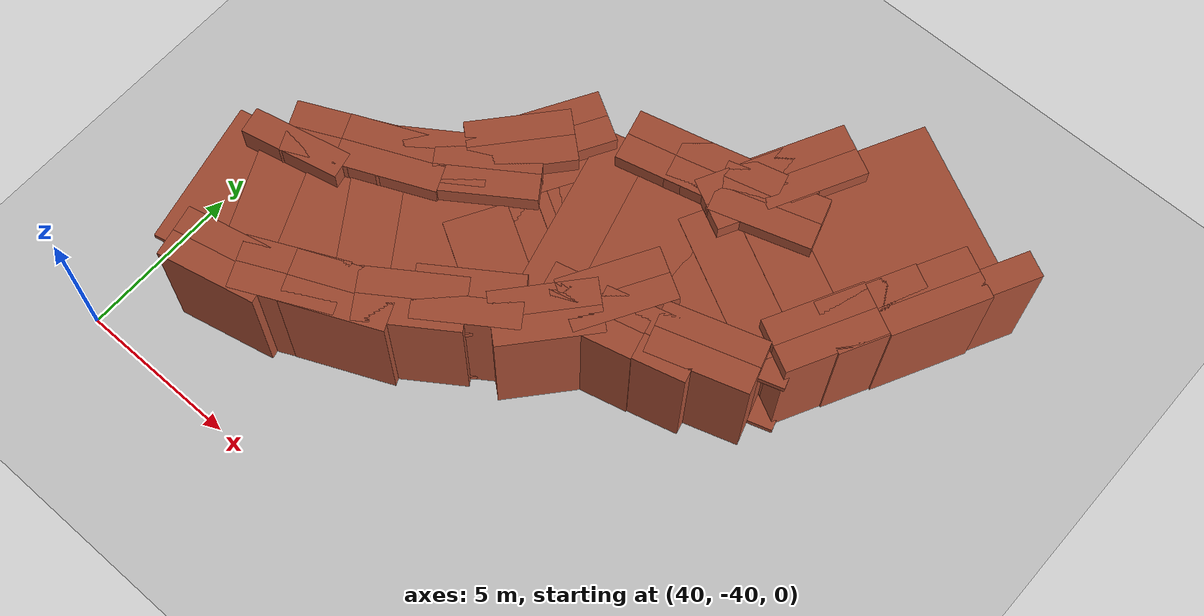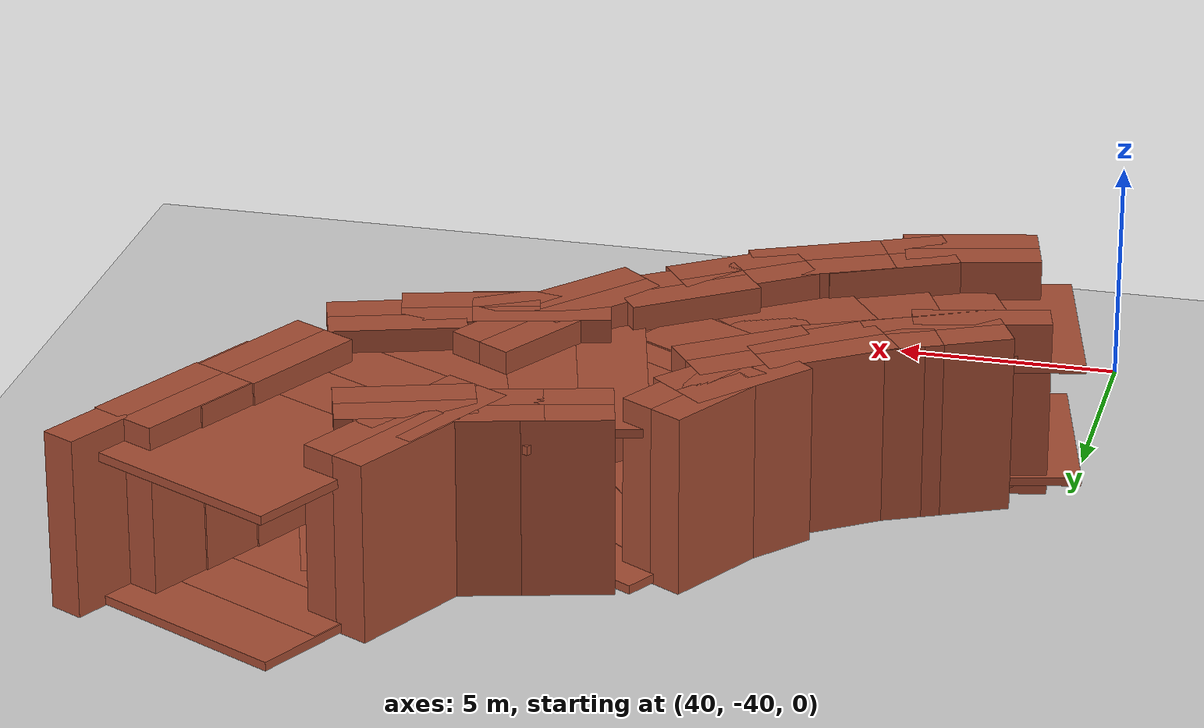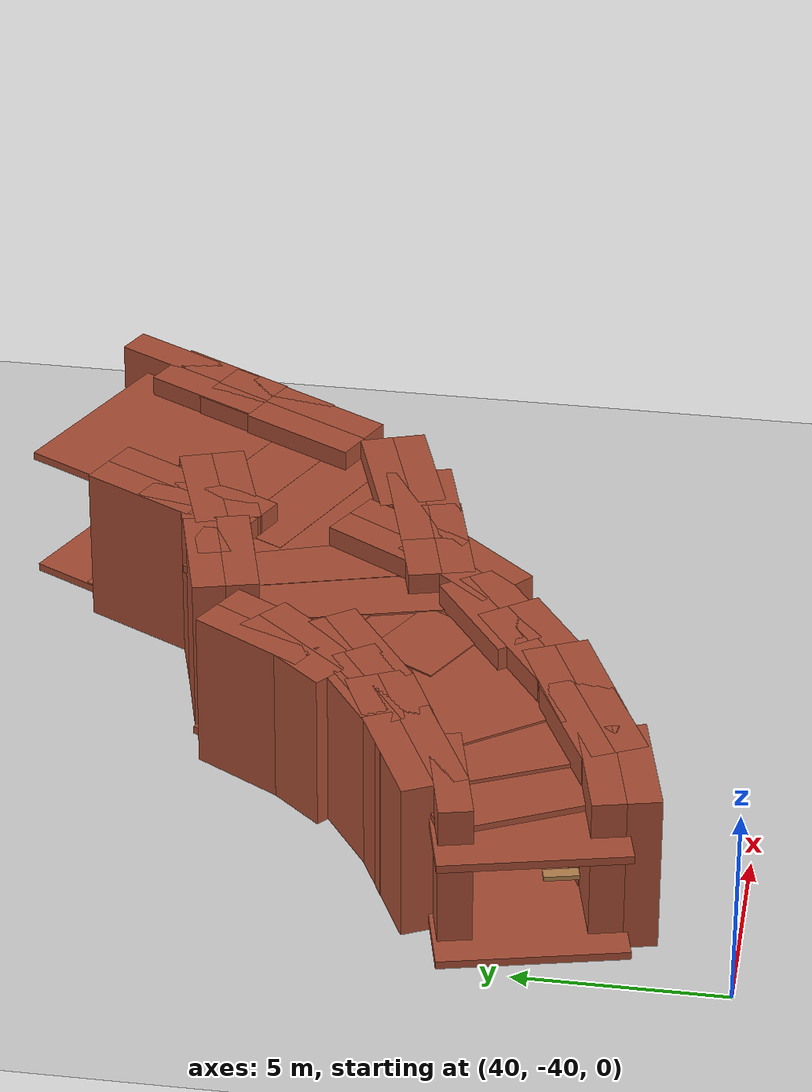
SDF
<sdf version="1.6">
 <world name="procedural_cave_world">
  <include><uri>model://sun</uri></include>
  <include><uri>model://ground_plane</uri></include>
  <model name="procedural_cave">
   <static>true</static>
   <link name="left_wall_40">
    <pose>42.07693247839063 -33.3320221090095 1.5 0 0 0.22591309134500118</pose>
    <collision name="collision"><geometry><box><size>3.0 0.8 5.0</size></box></geometry></collision>
    <visual name="visual">
     <geometry><box><size>3.0 0.8 5.0</size></box></geometry>
     <material>
      <script><uri>file://media/materials/scripts/gazebo.material</uri><name>Gazebo/Bricks</name></script>
     </material>
    </visual>
   </link>
   <link name="right_wall_40">
    <pose>42.84302637422118 -36.66523470073922 1.5 0 0 0.22591309134500118</pose>
    <collision name="collision"><geometry><box><size>3.0 0.8 5.0</size></box></geometry></collision>
    <visual name="visual">
     <geometry><box><size>3.0 0.8 5.0</size></box></geometry>
     <material>
      <script><uri>file://media/materials/scripts/gazebo.material</uri><name>Gazebo/Bricks</name></script>
     </material>
    </visual>
   </link>
   <link name="fill_right_40">
    <pose>43.02222345027279 -37.44490668813812 1.5 0 0 0.22591309134500118</pose>
    <collision name="collision"><geometry><box><size>3.0 0.8 5.0</size></box></geometry></collision>
    <visual name="visual">
     <geometry><box><size>3.0 0.8 5.0</size></box></geometry>
     <material>
      <script><uri>file://media/materials/scripts/gazebo.material</uri><name>Gazebo/Bricks</name></script>
     </material>
    </visual>
   </link>
   <link name="ceiling_40">
    <pose>42.45997942630591 -34.99862840487436 2.999546374531039 0 0 0.22591309134500118</pose>
    <collision name="collision"><geometry><box><size>4.5 4.42011783991347 0.2</size></box></geometry></collision>
    <visual name="visual">
     <geometry><box><size>4.5 4.42011783991347 0.2</size></box></geometry>
     <material>
      <script><uri>file://media/materials/scripts/gazebo.material</uri><name>Gazebo/Bricks</name></script>
     </material>
    </visual>
   </link>
   <link name="floor_40">
    <pose>42.45997942630591 -34.99862840487436 0.314416268008175 0 0 0.22591309134500118</pose>
    <collision name="collision"><geometry><box><size>4.5 4.42011783991347 0.2</size></box></geometry></collision>
    <visual name="visual">
     <geometry><box><size>4.5 4.42011783991347 0.2</size></box></geometry>
     <material>
      <script><uri>file://media/materials/scripts/gazebo.material</uri><name>Gazebo/Bricks</name></script>
     </material>
    </visual>
   </link>
   <link name="obs_slab_40">
    <pose>42.651502900263544 -35.831931552806786 0.9904191813266537 0 0 0.22591309134500118</pose>
    <collision name="collision">
     <geometry><box><size>0.3 0.8296286318725195 0.11065076611069069</size></box></geometry>
    </collision>
    <visual name="visual">
     <geometry><box><size>0.3 0.8296286318725195 0.11065076611069069</size></box></geometry>
     <material>
      <script><uri>file://media/materials/scripts/gazebo.material</uri><name>Gazebo/Wood</name></script>
     </material>
    </visual>
   </link>
   <link name="left_wall_41">
    <pose>43.07100946039234 -32.79503126979987 1.5 0 0 0.444954821912642</pose>
    <collision name="collision"><geometry><box><size>3.0 0.8 5.0</size></box></geometry></collision>
    <visual name="visual">
     <geometry><box><size>3.0 0.8 5.0</size></box></geometry>
     <material>
      <script><uri>file://media/materials/scripts/gazebo.material</uri><name>Gazebo/Bricks</name></script>
     </material>
    </visual>
   </link>
   <link name="right_wall_41">
    <pose>44.556839727435595 -35.91097423503444 1.5 0 0 0.444954821912642</pose>
    <collision name="collision"><geometry><box><size>3.0 0.8 5.0</size></box></geometry></collision>
    <visual name="visual">
     <geometry><box><size>3.0 0.8 5.0</size></box></geometry>
     <material>
      <script><uri>file://media/materials/scripts/gazebo.material</uri><name>Gazebo/Bricks</name></script>
     </material>
    </visual>
   </link>
   <link name="fill_left_41">
    <pose>42.72667577908183 -32.07292718040891 1.5 0 0 0.444954821912642</pose>
    <collision name="collision"><geometry><box><size>3.0 0.8 5.0</size></box></geometry></collision>
    <visual name="visual">
     <geometry><box><size>3.0 0.8 5.0</size></box></geometry>
     <material>
      <script><uri>file://media/materials/scripts/gazebo.material</uri><name>Gazebo/Bricks</name></script>
     </material>
    </visual>
   </link>
   <link name="fill_right_41">
    <pose>44.901173408746104 -36.6330783244254 1.5 0 0 0.444954821912642</pose>
    <collision name="collision"><geometry><box><size>3.0 0.8 5.0</size></box></geometry></collision>
    <visual name="visual">
     <geometry><box><size>3.0 0.8 5.0</size></box></geometry>
     <material>
      <script><uri>file://media/materials/scripts/gazebo.material</uri><name>Gazebo/Bricks</name></script>
     </material>
    </visual>
   </link>
   <link name="ceiling_41">
    <pose>43.81392459391397 -34.353002752417154 3.159727824718624 0 0 0.444954821912642</pose>
    <collision name="collision"><geometry><box><size>4.5 4.452070703948082 0.2</size></box></geometry></collision>
    <visual name="visual">
     <geometry><box><size>4.5 4.452070703948082 0.2</size></box></geometry>
     <material>
      <script><uri>file://media/materials/scripts/gazebo.material</uri><name>Gazebo/Bricks</name></script>
     </material>
    </visual>
   </link>
   <link name="floor_41">
    <pose>43.81392459391397 -34.353002752417154 0.22864976080490498 0 0 0.444954821912642</pose>
    <collision name="collision"><geometry><box><size>4.5 4.452070703948082 0.2</size></box></geometry></collision>
    <visual name="visual">
     <geometry><box><size>4.5 4.452070703948082 0.2</size></box></geometry>
     <material>
      <script><uri>file://media/materials/scripts/gazebo.material</uri><name>Gazebo/Bricks</name></script>
     </material>
    </visual>
   </link>
   <link name="left_wall_42">
    <pose>44.46812420741609 -32.15427497153864 1.5 0 0 0.4235111913891356</pose>
    <collision name="collision"><geometry><box><size>3.0 0.8 5.0</size></box></geometry></collision>
    <visual name="visual">
     <geometry><box><size>3.0 0.8 5.0</size></box></geometry>
     <material>
      <script><uri>file://media/materials/scripts/gazebo.material</uri><name>Gazebo/Bricks</name></script>
     </material>
    </visual>
   </link>
   <link name="right_wall_42">
    <pose>45.89467974973923 -35.31883864438839 1.5 0 0 0.4235111913891356</pose>
    <collision name="collision"><geometry><box><size>3.0 0.8 5.0</size></box></geometry></collision>
    <visual name="visual">
     <geometry><box><size>3.0 0.8 5.0</size></box></geometry>
     <material>
      <script><uri>file://media/materials/scripts/gazebo.material</uri><name>Gazebo/Bricks</name></script>
     </material>
    </visual>
   </link>
   <link name="fill_left_42">
    <pose>44.13935303704082 -31.424953699718003 1.5 0 0 0.4235111913891356</pose>
    <collision name="collision"><geometry><box><size>3.0 0.8 5.0</size></box></geometry></collision>
    <visual name="visual">
     <geometry><box><size>3.0 0.8 5.0</size></box></geometry>
     <material>
      <script><uri>file://media/materials/scripts/gazebo.material</uri><name>Gazebo/Bricks</name></script>
     </material>
    </visual>
   </link>
   <link name="fill_right_42">
    <pose>46.2234509201145 -36.04815991620903 1.5 0 0 0.4235111913891356</pose>
    <collision name="collision"><geometry><box><size>3.0 0.8 5.0</size></box></geometry></collision>
    <visual name="visual">
     <geometry><box><size>3.0 0.8 5.0</size></box></geometry>
     <material>
      <script><uri>file://media/materials/scripts/gazebo.material</uri><name>Gazebo/Bricks</name></script>
     </material>
    </visual>
   </link>
   <link name="ceiling_42">
    <pose>45.18140197857766 -33.73655680796352 3.2558366948311743 0 0 0.4235111913891356</pose>
    <collision name="collision"><geometry><box><size>4.5 4.471242422368849 0.2</size></box></geometry></collision>
    <visual name="visual">
     <geometry><box><size>4.5 4.471242422368849 0.2</size></box></geometry>
     <material>
      <script><uri>file://media/materials/scripts/gazebo.material</uri><name>Gazebo/Bricks</name></script>
     </material>
    </visual>
   </link>
   <link name="floor_42">
    <pose>45.18140197857766 -33.73655680796352 0.177189856482943 0 0 0.4235111913891356</pose>
    <collision name="collision"><geometry><box><size>4.5 4.471242422368849 0.2</size></box></geometry></collision>
    <visual name="visual">
     <geometry><box><size>4.5 4.471242422368849 0.2</size></box></geometry>
     <material>
      <script><uri>file://media/materials/scripts/gazebo.material</uri><name>Gazebo/Bricks</name></script>
     </material>
    </visual>
   </link>
   <link name="left_wall_43">
    <pose>45.42564844501193 -31.451229120964104 1.5 0 0 0.6045974022430027</pose>
    <collision name="collision"><geometry><box><size>3.0 0.8 5.0</size></box></geometry></collision>
    <visual name="visual">
     <geometry><box><size>3.0 0.8 5.0</size></box></geometry>
     <material>
      <script><uri>file://media/materials/scripts/gazebo.material</uri><name>Gazebo/Bricks</name></script>
     </material>
    </visual>
   </link>
   <link name="right_wall_43">
    <pose>47.40534855205766 -34.31659181693995 1.5 0 0 0.6045974022430027</pose>
    <collision name="collision"><geometry><box><size>3.0 0.8 5.0</size></box></geometry></collision>
    <visual name="visual">
     <geometry><box><size>3.0 0.8 5.0</size></box></geometry>
     <material>
      <script><uri>file://media/materials/scripts/gazebo.material</uri><name>Gazebo/Bricks</name></script>
     </material>
    </visual>
   </link>
   <link name="fill_left_43">
    <pose>44.97090373087247 -30.793044310320298 1.5 0 0 0.6045974022430027</pose>
    <collision name="collision"><geometry><box><size>3.0 0.8 5.0</size></box></geometry></collision>
    <visual name="visual">
     <geometry><box><size>3.0 0.8 5.0</size></box></geometry>
     <material>
      <script><uri>file://media/materials/scripts/gazebo.material</uri><name>Gazebo/Bricks</name></script>
     </material>
    </visual>
   </link>
   <link name="fill_right_43">
    <pose>47.86009326619712 -34.97477662758375 1.5 0 0 0.6045974022430027</pose>
    <collision name="collision"><geometry><box><size>3.0 0.8 5.0</size></box></geometry></collision>
    <visual name="visual">
     <geometry><box><size>3.0 0.8 5.0</size></box></geometry>
     <material>
      <script><uri>file://media/materials/scripts/gazebo.material</uri><name>Gazebo/Bricks</name></script>
     </material>
    </visual>
   </link>
   <link name="ceiling_43">
    <pose>46.415498498534795 -32.883910468952024 3.313502016898705 0 0 0.6045974022430027</pose>
    <collision name="collision"><geometry><box><size>4.5 4.48274545342131 0.2</size></box></geometry></collision>
    <visual name="visual">
     <geometry><box><size>4.5 4.48274545342131 0.2</size></box></geometry>
     <material>
      <script><uri>file://media/materials/scripts/gazebo.material</uri><name>Gazebo/Bricks</name></script>
     </material>
    </visual>
   </link>
   <link name="floor_43">
    <pose>46.415498498534795 -32.883910468952024 0.14631391388976578 0 0 0.6045974022430027</pose>
    <collision name="collision"><geometry><box><size>4.5 4.48274545342131 0.2</size></box></geometry></collision>
    <visual name="visual">
     <geometry><box><size>4.5 4.48274545342131 0.2</size></box></geometry>
     <material>
      <script><uri>file://media/materials/scripts/gazebo.material</uri><name>Gazebo/Bricks</name></script>
     </material>
    </visual>
   </link>
   <link name="left_wall_44">
    <pose>46.78834209818656 -30.79333187945832 1.5 0 0 0.6078522600656097</pose>
    <collision name="collision"><geometry><box><size>3.0 0.8 5.0</size></box></geometry></collision>
    <visual name="visual">
     <geometry><box><size>3.0 0.8 5.0</size></box></geometry>
     <material>
      <script><uri>file://media/materials/scripts/gazebo.material</uri><name>Gazebo/Bricks</name></script>
     </material>
    </visual>
   </link>
   <link name="right_wall_44">
    <pose>48.50528438925508 -33.26117181019603 1.5 0 0 0.6078522600656097</pose>
    <collision name="collision"><geometry><box><size>3.0 0.8 5.0</size></box></geometry></collision>
    <visual name="visual">
     <geometry><box><size>3.0 0.8 5.0</size></box></geometry>
     <material>
      <script><uri>file://media/materials/scripts/gazebo.material</uri><name>Gazebo/Bricks</name></script>
     </material>
    </visual>
   </link>
   <link name="fill_left_44">
    <pose>46.33145749865331 -30.136630682025775 1.5 0 0 0.6078522600656097</pose>
    <collision name="collision"><geometry><box><size>3.0 0.8 5.0</size></box></geometry></collision>
    <visual name="visual">
     <geometry><box><size>3.0 0.8 5.0</size></box></geometry>
     <material>
      <script><uri>file://media/materials/scripts/gazebo.material</uri><name>Gazebo/Bricks</name></script>
     </material>
    </visual>
   </link>
   <link name="fill_right_44">
    <pose>48.962168988788335 -33.91787300762858 1.5 0 0 0.6078522600656097</pose>
    <collision name="collision"><geometry><box><size>3.0 0.8 5.0</size></box></geometry></collision>
    <visual name="visual">
     <geometry><box><size>3.0 0.8 5.0</size></box></geometry>
     <material>
      <script><uri>file://media/materials/scripts/gazebo.material</uri><name>Gazebo/Bricks</name></script>
     </material>
    </visual>
   </link>
   <link name="ceiling_44">
    <pose>47.64681324372082 -32.02725184482718 3.313502016898705 0 0 0.6078522600656097</pose>
    <collision name="collision"><geometry><box><size>4.5 4.006347410829813 0.2</size></box></geometry></collision>
    <visual name="visual">
     <geometry><box><size>4.5 4.006347410829813 0.2</size></box></geometry>
     <material>
      <script><uri>file://media/materials/scripts/gazebo.material</uri><name>Gazebo/Bricks</name></script>
     </material>
    </visual>
   </link>
   <link name="floor_44">
    <pose>47.64681324372082 -32.02725184482718 0.1277883483338595 0 0 0.6078522600656097</pose>
    <collision name="collision"><geometry><box><size>4.5 4.006347410829813 0.2</size></box></geometry></collision>
    <visual name="visual">
     <geometry><box><size>4.5 4.006347410829813 0.2</size></box></geometry>
     <material>
      <script><uri>file://media/materials/scripts/gazebo.material</uri><name>Gazebo/Bricks</name></script>
     </material>
    </visual>
   </link>
   <link name="left_wall_45">
    <pose>46.981716945197654 -29.47959427127254 1.5 0 0 0.861482785032095</pose>
    <collision name="collision"><geometry><box><size>3.0 0.8 5.0</size></box></geometry></collision>
    <visual name="visual">
     <geometry><box><size>3.0 0.8 5.0</size></box></geometry>
     <material>
      <script><uri>file://media/materials/scripts/gazebo.material</uri><name>Gazebo/Bricks</name></script>
     </material>
    </visual>
   </link>
   <link name="right_wall_45">
    <pose>50.26584864342116 -32.29848195657 1.5 0 0 0.861482785032095</pose>
    <collision name="collision"><geometry><box><size>3.0 0.8 5.0</size></box></geometry></collision>
    <visual name="visual">
     <geometry><box><size>3.0 0.8 5.0</size></box></geometry>
     <material>
      <script><uri>file://media/materials/scripts/gazebo.material</uri><name>Gazebo/Bricks</name></script>
     </material>
    </visual>
   </link>
   <link name="fill_left_45">
    <pose>46.37466962204783 -28.958543844291963 1.5 0 0 0.861482785032095</pose>
    <collision name="collision"><geometry><box><size>3.0 0.8 5.0</size></box></geometry></collision>
    <visual name="visual">
     <geometry><box><size>3.0 0.8 5.0</size></box></geometry>
     <material>
      <script><uri>file://media/materials/scripts/gazebo.material</uri><name>Gazebo/Bricks</name></script>
     </material>
    </visual>
   </link>
   <link name="fill_right_45">
    <pose>50.87289596657098 -32.81953238355058 1.5 0 0 0.861482785032095</pose>
    <collision name="collision"><geometry><box><size>3.0 0.8 5.0</size></box></geometry></collision>
    <visual name="visual">
     <geometry><box><size>3.0 0.8 5.0</size></box></geometry>
     <material>
      <script><uri>file://media/materials/scripts/gazebo.material</uri><name>Gazebo/Bricks</name></script>
     </material>
    </visual>
   </link>
   <link name="ceiling_45">
    <pose>48.623782794309406 -30.88903811392127 3.313502016898705 0 0 0.861482785032095</pose>
    <collision name="collision"><geometry><box><size>4.5 5.328007485390718 0.2</size></box></geometry></collision>
    <visual name="visual">
     <geometry><box><size>4.5 5.328007485390718 0.2</size></box></geometry>
     <material>
      <script><uri>file://media/materials/scripts/gazebo.material</uri><name>Gazebo/Bricks</name></script>
     </material>
    </visual>
   </link>
   <link name="floor_45">
    <pose>48.623782794309406 -30.88903811392127 0.11667300900031569 0 0 0.861482785032095</pose>
    <collision name="collision"><geometry><box><size>4.5 5.328007485390718 0.2</size></box></geometry></collision>
    <visual name="visual">
     <geometry><box><size>4.5 5.328007485390718 0.2</size></box></geometry>
     <material>
      <script><uri>file://media/materials/scripts/gazebo.material</uri><name>Gazebo/Bricks</name></script>
     </material>
    </visual>
   </link>
   <link name="left_wall_46">
    <pose>47.54796760069818 -28.54219124389852 1.5 0 0 1.0498024858489399</pose>
    <collision name="collision"><geometry><box><size>3.0 0.8 5.0</size></box></geometry></collision>
    <visual name="visual">
     <geometry><box><size>3.0 0.8 5.0</size></box></geometry>
     <material>
      <script><uri>file://media/materials/scripts/gazebo.material</uri><name>Gazebo/Bricks</name></script>
     </material>
    </visual>
   </link>
   <link name="right_wall_46">
    <pose>51.192825087561765 -30.633910189889065 1.5 0 0 1.0498024858489399</pose>
    <collision name="collision"><geometry><box><size>3.0 0.8 5.0</size></box></geometry></collision>
    <visual name="visual">
     <geometry><box><size>3.0 0.8 5.0</size></box></geometry>
     <material>
      <script><uri>file://media/materials/scripts/gazebo.material</uri><name>Gazebo/Bricks</name></script>
     </material>
    </visual>
   </link>
   <link name="fill_left_46">
    <pose>46.85410765561686 -28.143997350660886 1.5 0 0 1.0498024858489399</pose>
    <collision name="collision"><geometry><box><size>3.0 0.8 5.0</size></box></geometry></collision>
    <visual name="visual">
     <geometry><box><size>3.0 0.8 5.0</size></box></geometry>
     <material>
      <script><uri>file://media/materials/scripts/gazebo.material</uri><name>Gazebo/Bricks</name></script>
     </material>
    </visual>
   </link>
   <link name="fill_right_46">
    <pose>51.886685032643086 -31.0321040831267 1.5 0 0 1.0498024858489399</pose>
    <collision name="collision"><geometry><box><size>3.0 0.8 5.0</size></box></geometry></collision>
    <visual name="visual">
     <geometry><box><size>3.0 0.8 5.0</size></box></geometry>
     <material>
      <script><uri>file://media/materials/scripts/gazebo.material</uri><name>Gazebo/Bricks</name></script>
     </material>
    </visual>
   </link>
   <link name="ceiling_hole_46_-1_-1">
    <pose>49.45780150989895 -29.43574566011059 3.3481012101392227 0 0 1.0498024858489399</pose>
    <collision name="collision">
     <geometry><box><size>1.85 2.2012064539545704 0.2</size></box></geometry>
    </collision>
    <visual name="visual">
     <geometry><box><size>1.85 2.2012064539545704 0.2</size></box></geometry>
     <material>
      <script><uri>file://media/materials/scripts/gazebo.material</uri><name>Gazebo/Bricks</name></script>
     </material>
    </visual>
   </link>
   <link name="ceiling_hole_46_-1_1">
    <pose>50.776818781248615 -27.137334592028715 3.3481012101392227 0 0 1.0498024858489399</pose>
    <collision name="collision">
     <geometry><box><size>1.85 2.2012064539545704 0.2</size></box></geometry>
    </collision>
    <visual name="visual">
     <geometry><box><size>1.85 2.2012064539545704 0.2</size></box></geometry>
     <material>
      <script><uri>file://media/materials/scripts/gazebo.material</uri><name>Gazebo/Bricks</name></script>
     </material>
    </visual>
   </link>
   <link name="ceiling_hole_46_1_-1">
    <pose>47.96397390701133 -32.03876684175887 3.3481012101392227 0 0 1.0498024858489399</pose>
    <collision name="collision">
     <geometry><box><size>1.85 2.2012064539545704 0.2</size></box></geometry>
    </collision>
    <visual name="visual">
     <geometry><box><size>1.85 2.2012064539545704 0.2</size></box></geometry>
     <material>
      <script><uri>file://media/materials/scripts/gazebo.material</uri><name>Gazebo/Bricks</name></script>
     </material>
    </visual>
   </link>
   <link name="ceiling_hole_46_1_1">
    <pose>49.282991178360994 -29.740355773676995 3.3481012101392227 0 0 1.0498024858489399</pose>
    <collision name="collision">
     <geometry><box><size>1.85 2.2012064539545704 0.2</size></box></geometry>
    </collision>
    <visual name="visual">
     <geometry><box><size>1.85 2.2012064539545704 0.2</size></box></geometry>
     <material>
      <script><uri>file://media/materials/scripts/gazebo.material</uri><name>Gazebo/Bricks</name></script>
     </material>
    </visual>
   </link>
   <link name="floor_46">
    <pose>49.37039634412997 -29.588050716893793 0.11000380540018942 0 0 1.0498024858489399</pose>
    <collision name="collision"><geometry><box><size>4.5 5.202412907909141 0.2</size></box></geometry></collision>
    <visual name="visual">
     <geometry><box><size>4.5 5.202412907909141 0.2</size></box></geometry>
     <material>
      <script><uri>file://media/materials/scripts/gazebo.material</uri><name>Gazebo/Bricks</name></script>
     </material>
    </visual>
   </link>
   <link name="left_wall_47">
    <pose>50.28834598561086 -27.118344888766696 1.5 0 0 0.24980248584893983</pose>
    <collision name="collision"><geometry><box><size>3.0 0.8 5.0</size></box></geometry></collision>
    <visual name="visual">
     <geometry><box><size>3.0 0.8 5.0</size></box></geometry>
     <material>
      <script><uri>file://media/materials/scripts/gazebo.material</uri><name>Gazebo/Bricks</name></script>
     </material>
    </visual>
   </link>
   <link name="right_wall_47">
    <pose>51.35933050843042 -31.316118803474392 1.5 0 0 0.24980248584893983</pose>
    <collision name="collision"><geometry><box><size>3.0 0.8 5.0</size></box></geometry></collision>
    <visual name="visual">
     <geometry><box><size>3.0 0.8 5.0</size></box></geometry>
     <material>
      <script><uri>file://media/materials/scripts/gazebo.material</uri><name>Gazebo/Bricks</name></script>
     </material>
    </visual>
   </link>
   <link name="fill_left_47">
    <pose>50.090575921198464 -26.343175873891674 1.5 0 0 0.24980248584893983</pose>
    <collision name="collision"><geometry><box><size>3.0 0.8 5.0</size></box></geometry></collision>
    <visual name="visual">
     <geometry><box><size>3.0 0.8 5.0</size></box></geometry>
     <material>
      <script><uri>file://media/materials/scripts/gazebo.material</uri><name>Gazebo/Bricks</name></script>
     </material>
    </visual>
   </link>
   <link name="fill_right_47">
    <pose>51.55710057284281 -32.091287818349414 1.5 0 0 0.24980248584893983</pose>
    <collision name="collision"><geometry><box><size>3.0 0.8 5.0</size></box></geometry></collision>
    <visual name="visual">
     <geometry><box><size>3.0 0.8 5.0</size></box></geometry>
     <material>
      <script><uri>file://media/materials/scripts/gazebo.material</uri><name>Gazebo/Bricks</name></script>
     </material>
    </visual>
   </link>
   <link name="ceiling_47">
    <pose>50.82383824702064 -29.217231846120544 3.368860726083534 0 0 0.24980248584893983</pose>
    <collision name="collision"><geometry><box><size>4.5 5.332241185243428 0.2</size></box></geometry></collision>
    <visual name="visual">
     <geometry><box><size>4.5 5.332241185243428 0.2</size></box></geometry>
     <material>
      <script><uri>file://media/materials/scripts/gazebo.material</uri><name>Gazebo/Bricks</name></script>
     </material>
    </visual>
   </link>
   <link name="floor_47">
    <pose>50.82383824702064 -29.217231846120544 0.10600228324011365 0 0 0.24980248584893983</pose>
    <collision name="collision"><geometry><box><size>4.5 5.332241185243428 0.2</size></box></geometry></collision>
    <visual name="visual">
     <geometry><box><size>4.5 5.332241185243428 0.2</size></box></geometry>
     <material>
      <script><uri>file://media/materials/scripts/gazebo.material</uri><name>Gazebo/Bricks</name></script>
     </material>
    </visual>
   </link>
   <link name="left_wall_48">
    <pose>51.70787360607486 -26.74121079672464 1.5 0 0 0.26422693812294995</pose>
    <collision name="collision"><geometry><box><size>3.0 0.8 5.0</size></box></geometry></collision>
    <visual name="visual">
     <geometry><box><size>3.0 0.8 5.0</size></box></geometry>
     <material>
      <script><uri>file://media/materials/scripts/gazebo.material</uri><name>Gazebo/Bricks</name></script>
     </material>
    </visual>
   </link>
   <link name="right_wall_48">
    <pose>52.83568694161668 -30.90976355429086 1.5 0 0 0.26422693812294995</pose>
    <collision name="collision"><geometry><box><size>3.0 0.8 5.0</size></box></geometry></collision>
    <visual name="visual">
     <geometry><box><size>3.0 0.8 5.0</size></box></geometry>
     <material>
      <script><uri>file://media/materials/scripts/gazebo.material</uri><name>Gazebo/Bricks</name></script>
     </material>
    </visual>
   </link>
   <link name="fill_left_48">
    <pose>51.498943115081374 -25.96897504908457 1.5 0 0 0.26422693812294995</pose>
    <collision name="collision"><geometry><box><size>3.0 0.8 5.0</size></box></geometry></collision>
    <visual name="visual">
     <geometry><box><size>3.0 0.8 5.0</size></box></geometry>
     <material>
      <script><uri>file://media/materials/scripts/gazebo.material</uri><name>Gazebo/Bricks</name></script>
     </material>
    </visual>
   </link>
   <link name="fill_right_48">
    <pose>53.04461743261017 -31.68199930193093 1.5 0 0 0.26422693812294995</pose>
    <collision name="collision"><geometry><box><size>3.0 0.8 5.0</size></box></geometry></collision>
    <visual name="visual">
     <geometry><box><size>3.0 0.8 5.0</size></box></geometry>
     <material>
      <script><uri>file://media/materials/scripts/gazebo.material</uri><name>Gazebo/Bricks</name></script>
     </material>
    </visual>
   </link>
   <link name="ceiling_48">
    <pose>52.27178027384577 -28.82548717550775 3.38131643565012 0 0 0.26422693812294995</pose>
    <collision name="collision"><geometry><box><size>4.5 5.318425061574979 0.2</size></box></geometry></collision>
    <visual name="visual">
     <geometry><box><size>4.5 5.318425061574979 0.2</size></box></geometry>
     <material>
      <script><uri>file://media/materials/scripts/gazebo.material</uri><name>Gazebo/Bricks</name></script>
     </material>
    </visual>
   </link>
   <link name="floor_48">
    <pose>52.27178027384577 -28.82548717550775 0.1036013699440682 0 0 0.26422693812294995</pose>
    <collision name="collision"><geometry><box><size>4.5 5.318425061574979 0.2</size></box></geometry></collision>
    <visual name="visual">
     <geometry><box><size>4.5 5.318425061574979 0.2</size></box></geometry>
     <material>
      <script><uri>file://media/materials/scripts/gazebo.material</uri><name>Gazebo/Bricks</name></script>
     </material>
    </visual>
   </link>
   <link name="obs_stone_48">
    <pose>52.27178027384577 -27.574473223554087 0.8583242022994914 0 0 2.5932677471631704</pose>
    <collision name="collision">
     <geometry><box><size>0.2939351379249835 0.27430133806082174 1.7094456647108462</size></box></geometry>
    </collision>
    <visual name="visual">
     <geometry><box><size>0.36809919413052883 0.4206448488473191 1.7094456647108462</size></box></geometry>
     <material>
      <script><uri>file://media/materials/scripts/gazebo.material</uri><name>Gazebo/Wood</name></script>
     </material>
    </visual>
   </link>
   <link name="left_wall_49">
    <pose>53.13226088910903 -26.602033967526562 1.5 0 0 0.3112145332278831</pose>
    <collision name="collision"><geometry><box><size>3.0 0.8 5.0</size></box></geometry></collision>
    <visual name="visual">
     <geometry><box><size>3.0 0.8 5.0</size></box></geometry>
     <material>
      <script><uri>file://media/materials/scripts/gazebo.material</uri><name>Gazebo/Bricks</name></script>
     </material>
    </visual>
   </link>
   <link name="right_wall_49">
    <pose>54.26718674979397 -30.13029522770149 1.5 0 0 0.3112145332278831</pose>
    <collision name="collision"><geometry><box><size>3.0 0.8 5.0</size></box></geometry></collision>
    <visual name="visual">
     <geometry><box><size>3.0 0.8 5.0</size></box></geometry>
     <material>
      <script><uri>file://media/materials/scripts/gazebo.material</uri><name>Gazebo/Bricks</name></script>
     </material>
    </visual>
   </link>
   <link name="fill_left_49">
    <pose>52.887288847565706 -25.84046407653684 1.5 0 0 0.3112145332278831</pose>
    <collision name="collision"><geometry><box><size>3.0 0.8 5.0</size></box></geometry></collision>
    <visual name="visual">
     <geometry><box><size>3.0 0.8 5.0</size></box></geometry>
     <material>
      <script><uri>file://media/materials/scripts/gazebo.material</uri><name>Gazebo/Bricks</name></script>
     </material>
    </visual>
   </link>
   <link name="fill_right_49">
    <pose>54.51215879133729 -30.891865118691214 1.5 0 0 0.3112145332278831</pose>
    <collision name="collision"><geometry><box><size>3.0 0.8 5.0</size></box></geometry></collision>
    <visual name="visual">
     <geometry><box><size>3.0 0.8 5.0</size></box></geometry>
     <material>
      <script><uri>file://media/materials/scripts/gazebo.material</uri><name>Gazebo/Bricks</name></script>
     </material>
    </visual>
   </link>
   <link name="ceiling_49">
    <pose>53.6997238194515 -28.366164597614027 3.38131643565012 0 0 0.3112145332278831</pose>
    <collision name="collision"><geometry><box><size>4.5 4.706303310483728 0.2</size></box></geometry></collision>
    <visual name="visual">
     <geometry><box><size>4.5 4.706303310483728 0.2</size></box></geometry>
     <material>
      <script><uri>file://media/materials/scripts/gazebo.material</uri><name>Gazebo/Bricks</name></script>
     </material>
    </visual>
   </link>
   <link name="floor_49">
    <pose>53.6997238194515 -28.366164597614027 0.10216082196644091 0 0 0.3112145332278831</pose>
    <collision name="collision"><geometry><box><size>4.5 4.706303310483728 0.2</size></box></geometry></collision>
    <visual name="visual">
     <geometry><box><size>4.5 4.706303310483728 0.2</size></box></geometry>
     <material>
      <script><uri>file://media/materials/scripts/gazebo.material</uri><name>Gazebo/Bricks</name></script>
     </material>
    </visual>
   </link>
   <link name="left_wall_50">
    <pose>52.76534741286991 -26.20748683058531 1.5 0 0 1.1</pose>
    <collision name="collision"><geometry><box><size>3.0 0.8 5.0</size></box></geometry></collision>
    <visual name="visual">
     <geometry><box><size>3.0 0.8 5.0</size></box></geometry>
     <material>
      <script><uri>file://media/materials/scripts/gazebo.material</uri><name>Gazebo/Bricks</name></script>
     </material>
    </visual>
   </link>
   <link name="right_wall_50">
    <pose>55.99488859030982 -27.851220284458435 1.5 0 0 1.1</pose>
    <collision name="collision"><geometry><box><size>3.0 0.8 5.0</size></box></geometry></collision>
    <visual name="visual">
     <geometry><box><size>3.0 0.8 5.0</size></box></geometry>
     <material>
      <script><uri>file://media/materials/scripts/gazebo.material</uri><name>Gazebo/Bricks</name></script>
     </material>
    </visual>
   </link>
   <link name="fill_left_50">
    <pose>52.05238152482076 -25.844609933444847 1.5 0 0 1.1</pose>
    <collision name="collision"><geometry><box><size>3.0 0.8 5.0</size></box></geometry></collision>
    <visual name="visual">
     <geometry><box><size>3.0 0.8 5.0</size></box></geometry>
     <material>
      <script><uri>file://media/materials/scripts/gazebo.material</uri><name>Gazebo/Bricks</name></script>
     </material>
    </visual>
   </link>
   <link name="fill_right_50">
    <pose>56.70785447835897 -28.2140971815989 1.5 0 0 1.1</pose>
    <collision name="collision"><geometry><box><size>3.0 0.8 5.0</size></box></geometry></collision>
    <visual name="visual">
     <geometry><box><size>3.0 0.8 5.0</size></box></geometry>
     <material>
      <script><uri>file://media/materials/scripts/gazebo.material</uri><name>Gazebo/Bricks</name></script>
     </material>
    </visual>
   </link>
   <link name="ceiling_50">
    <pose>54.380118001589864 -27.029353557521873 3.3887898613900718 0 0 1.1</pose>
    <collision name="collision"><geometry><box><size>4.5 4.623781986290236 0.2</size></box></geometry></collision>
    <visual name="visual">
     <geometry><box><size>4.5 4.623781986290236 0.2</size></box></geometry>
     <material>
      <script><uri>file://media/materials/scripts/gazebo.material</uri><name>Gazebo/Bricks</name></script>
     </material>
    </visual>
   </link>
   <link name="floor_50">
    <pose>54.380118001589864 -27.029353557521873 0.10129649317986456 0 0 1.1</pose>
    <collision name="collision"><geometry><box><size>4.5 4.623781986290236 0.2</size></box></geometry></collision>
    <visual name="visual">
     <geometry><box><size>4.5 4.623781986290236 0.2</size></box></geometry>
     <material>
      <script><uri>file://media/materials/scripts/gazebo.material</uri><name>Gazebo/Bricks</name></script>
     </material>
    </visual>
   </link>
   <link name="left_wall_51">
    <pose>53.40734894825682 -24.851135157820952 1.5 0 0 1.1</pose>
    <collision name="collision"><geometry><box><size>3.0 0.8 5.0</size></box></geometry></collision>
    <visual name="visual">
     <geometry><box><size>3.0 0.8 5.0</size></box></geometry>
     <material>
      <script><uri>file://media/materials/scripts/gazebo.material</uri><name>Gazebo/Bricks</name></script>
     </material>
    </visual>
   </link>
   <link name="right_wall_51">
    <pose>56.71367541919964 -26.533949877038484 1.5 0 0 1.1</pose>
    <collision name="collision"><geometry><box><size>3.0 0.8 5.0</size></box></geometry></collision>
    <visual name="visual">
     <geometry><box><size>3.0 0.8 5.0</size></box></geometry>
     <material>
      <script><uri>file://media/materials/scripts/gazebo.material</uri><name>Gazebo/Bricks</name></script>
     </material>
    </visual>
   </link>
   <link name="fill_left_51">
    <pose>52.69438306020767 -24.488258260680492 1.5 0 0 1.1</pose>
    <collision name="collision"><geometry><box><size>3.0 0.8 5.0</size></box></geometry></collision>
    <visual name="visual">
     <geometry><box><size>3.0 0.8 5.0</size></box></geometry>
     <material>
      <script><uri>file://media/materials/scripts/gazebo.material</uri><name>Gazebo/Bricks</name></script>
     </material>
    </visual>
   </link>
   <link name="fill_right_51">
    <pose>57.42664130724879 -26.896826774178944 1.5 0 0 1.1</pose>
    <collision name="collision"><geometry><box><size>3.0 0.8 5.0</size></box></geometry></collision>
    <visual name="visual">
     <geometry><box><size>3.0 0.8 5.0</size></box></geometry>
     <material>
      <script><uri>file://media/materials/scripts/gazebo.material</uri><name>Gazebo/Bricks</name></script>
     </material>
    </visual>
   </link>
   <link name="ceiling_51">
    <pose>55.06051218372823 -25.692542517429718 3.3932739168340427 0 0 1.1</pose>
    <collision name="collision"><geometry><box><size>4.5 4.709940715385139 0.2</size></box></geometry></collision>
    <visual name="visual">
     <geometry><box><size>4.5 4.709940715385139 0.2</size></box></geometry>
     <material>
      <script><uri>file://media/materials/scripts/gazebo.material</uri><name>Gazebo/Bricks</name></script>
     </material>
    </visual>
   </link>
   <link name="floor_51">
    <pose>55.06051218372823 -25.692542517429718 0.10077789590791873 0 0 1.1</pose>
    <collision name="collision"><geometry><box><size>4.5 4.709940715385139 0.2</size></box></geometry></collision>
    <visual name="visual">
     <geometry><box><size>4.5 4.709940715385139 0.2</size></box></geometry>
     <material>
      <script><uri>file://media/materials/scripts/gazebo.material</uri><name>Gazebo/Bricks</name></script>
     </material>
    </visual>
   </link>
   <link name="right_wall_52">
    <pose>57.42866696791621 -25.2147477930599 1.5 0 0 1.1</pose>
    <collision name="collision"><geometry><box><size>3.0 0.8 5.0</size></box></geometry></collision>
    <visual name="visual">
     <geometry><box><size>3.0 0.8 5.0</size></box></geometry>
     <material>
      <script><uri>file://media/materials/scripts/gazebo.material</uri><name>Gazebo/Bricks</name></script>
     </material>
    </visual>
   </link>
   <link name="fill_right_52">
    <pose>58.141632855965355 -25.57762469020036 1.5 0 0 1.1</pose>
    <collision name="collision"><geometry><box><size>3.0 0.8 5.0</size></box></geometry></collision>
    <visual name="visual">
     <geometry><box><size>3.0 0.8 5.0</size></box></geometry>
     <material>
      <script><uri>file://media/materials/scripts/gazebo.material</uri><name>Gazebo/Bricks</name></script>
     </material>
    </visual>
   </link>
   <link name="ceiling_52">
    <pose>55.74090636586659 -24.355731477337564 3.3959643501004257 0 0 1.1</pose>
    <collision name="collision">
     <geometry><box><size>4.5 4.7875822792425495 0.2</size></box></geometry>
    </collision>
    <visual name="visual">
     <geometry><box><size>4.5 4.7875822792425495 0.2</size></box></geometry>
     <material>
      <script><uri>file://media/materials/scripts/gazebo.material</uri><name>Gazebo/Bricks</name></script>
     </material>
    </visual>
   </link>
   <link name="floor_52">
    <pose>55.74090636586659 -24.355731477337564 0.10046673754475124 0 0 1.1</pose>
    <collision name="collision">
     <geometry><box><size>4.5 4.7875822792425495 0.2</size></box></geometry>
    </collision>
    <visual name="visual">
     <geometry><box><size>4.5 4.7875822792425495 0.2</size></box></geometry>
     <material>
      <script><uri>file://media/materials/scripts/gazebo.material</uri><name>Gazebo/Bricks</name></script>
     </material>
    </visual>
   </link>
   <link name="fill_right_53">
    <pose>58.77076794932688 -24.214724408817176 1.5 0 0 1.1</pose>
    <collision name="collision"><geometry><box><size>3.0 0.8 5.0</size></box></geometry></collision>
    <visual name="visual">
     <geometry><box><size>3.0 0.8 5.0</size></box></geometry>
     <material>
      <script><uri>file://media/materials/scripts/gazebo.material</uri><name>Gazebo/Bricks</name></script>
     </material>
    </visual>
   </link>
  </model>
 </world>
</sdf>
